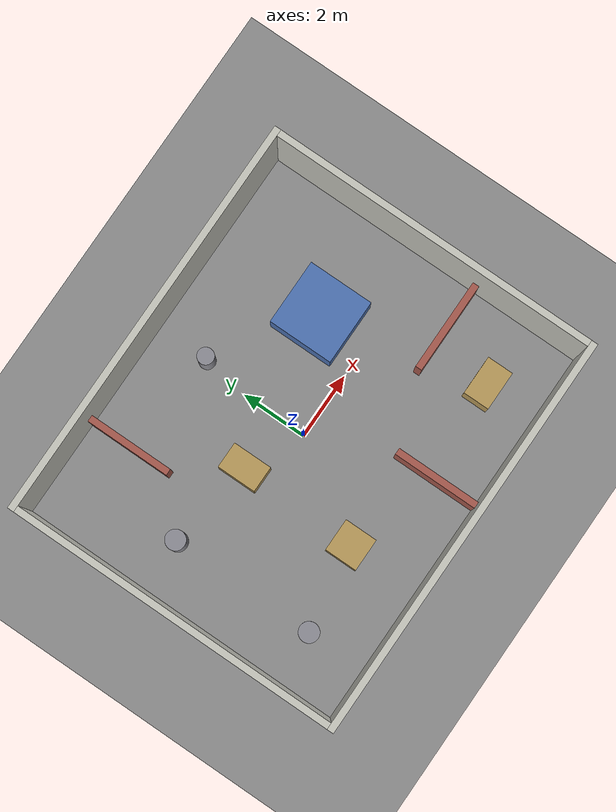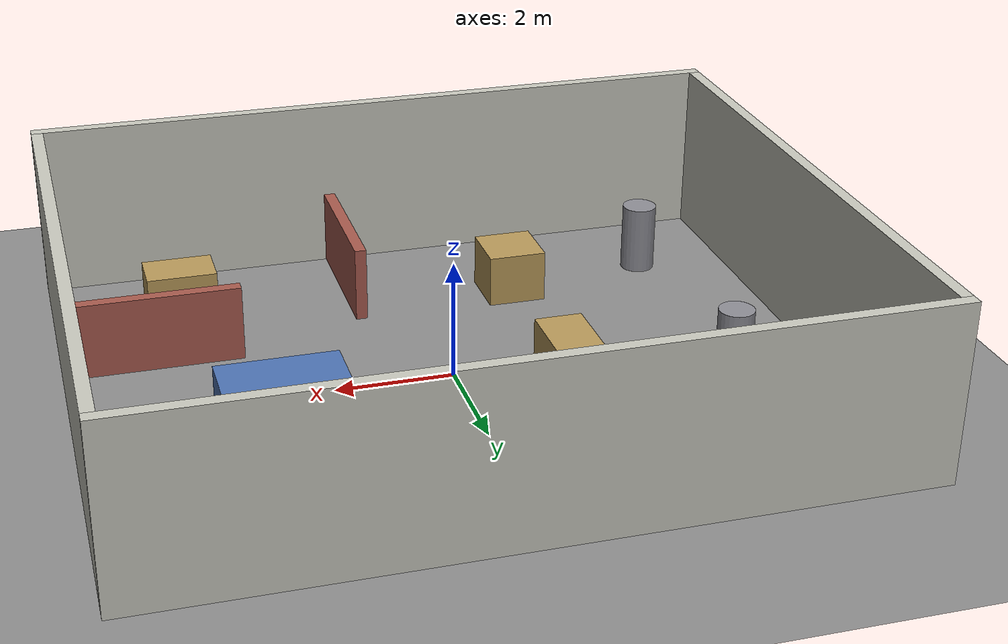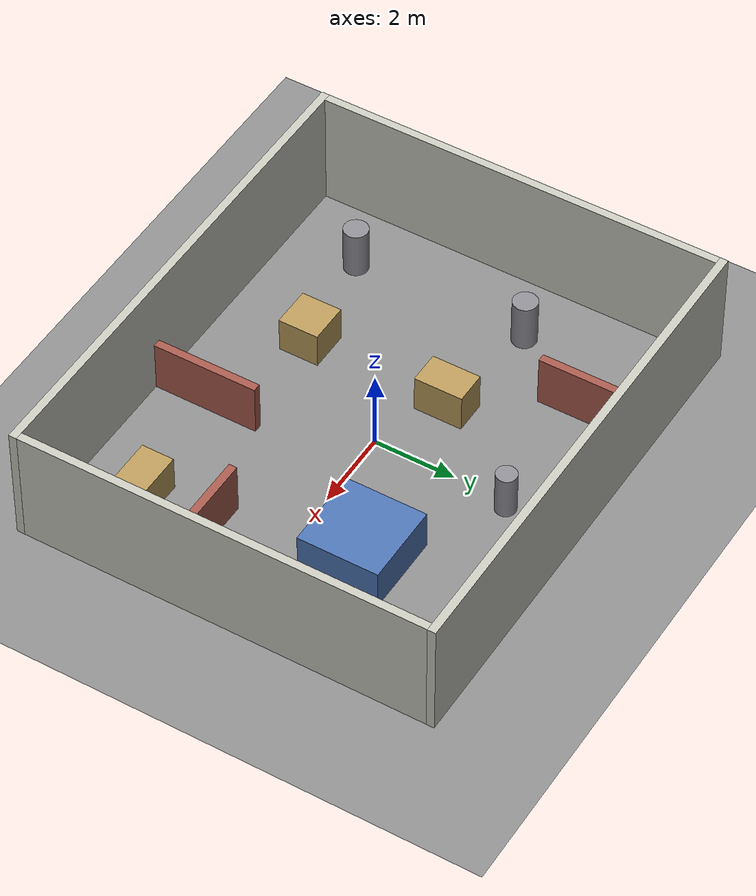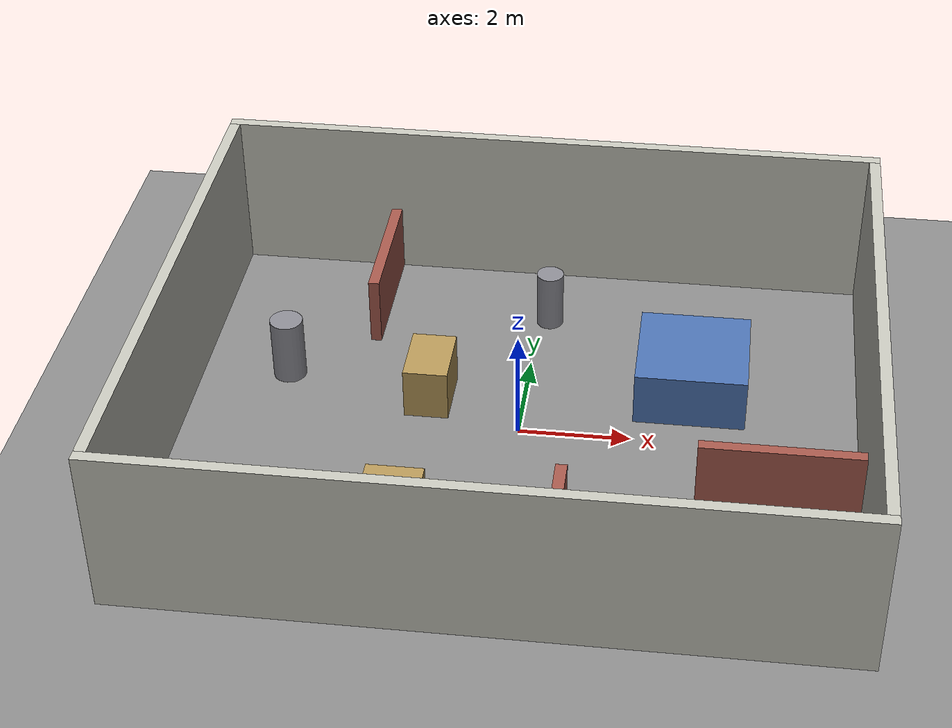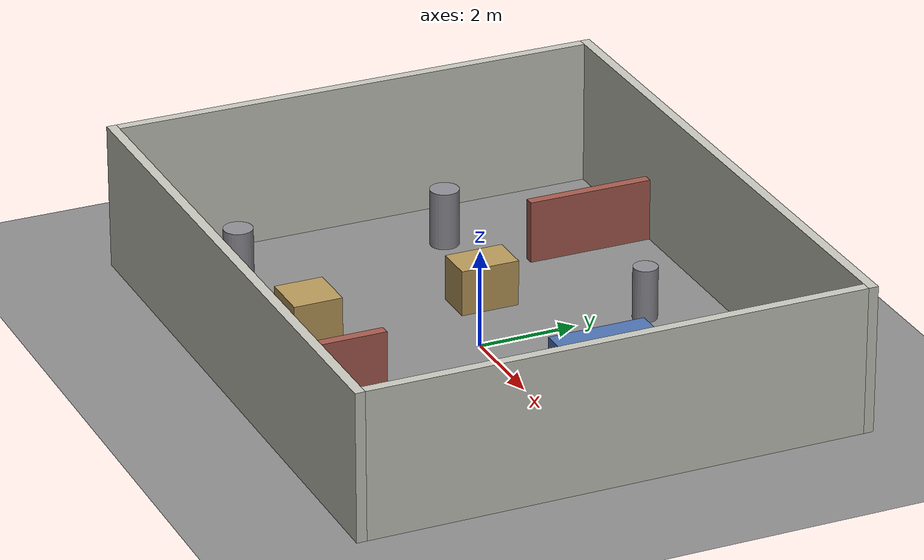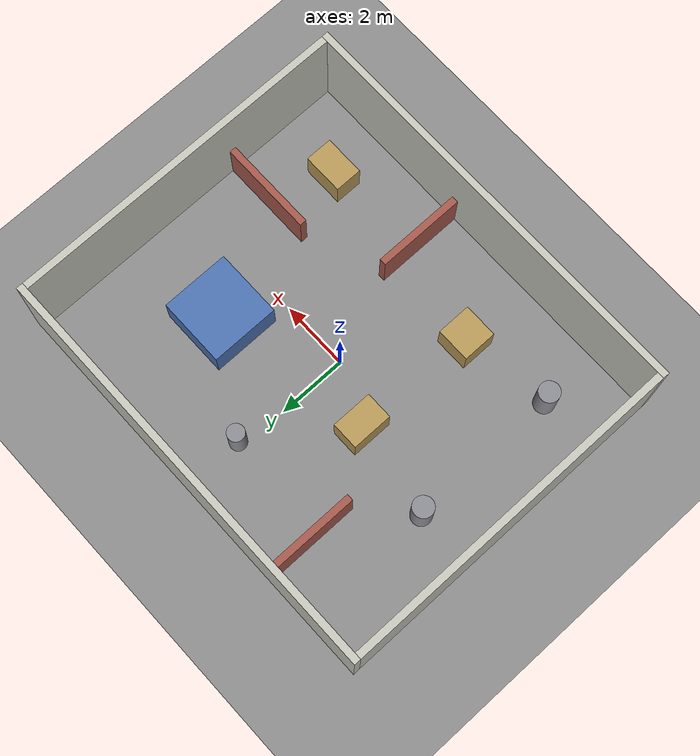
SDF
<?xml version="1.0" ?>
<!-- Generated by unitree_go2_description/tools/gen_simple_room.py - edit that script, not this file. -->
<sdf version="1.8">
  <world name="simple_room">
    <!-- bullet-featherstone handles articulated bodies far better than the default
         engine; a quadruped's legs jitter noticeably without it. -->
    <physics name="1ms" type="bullet-featherstone">
      <max_step_size>0.001</max_step_size>
      <real_time_factor>1.0</real_time_factor>
    </physics>
    <plugin filename="gz-sim-physics-system" name="gz::sim::systems::Physics"></plugin>
    <plugin filename="gz-sim-sensors-system" name="gz::sim::systems::Sensors">
      <render_engine>ogre2</render_engine>
    </plugin>
    <plugin filename="gz-sim-user-commands-system" name="gz::sim::systems::UserCommands"></plugin>
    <plugin filename="gz-sim-scene-broadcaster-system" name="gz::sim::systems::SceneBroadcaster"></plugin>

    <scene>
      <ambient>0.6 0.6 0.6 1</ambient>
      <background>0.7 0.8 0.9 1</background>
      <shadows>false</shadows>
    </scene>

    <light type="directional" name="sun">
      <cast_shadows>false</cast_shadows>
      <pose>-22 -18 25 0 0 0</pose>
      <diffuse>0.9 0.9 0.9 1</diffuse>
      <specular>0.2 0.2 0.2 1</specular>
      <direction>-0.5 0.2 -0.9</direction>
    </light>

    <model name="ground_plane">
      <static>true</static>
      <link name="link">
        <collision name="collision">
          <geometry><plane><normal>0 0 1</normal><size>40 40</size></plane></geometry>
          <surface>
            <friction><ode><mu>0.9</mu><mu2>0.9</mu2></ode></friction>
          </surface>
        </collision>
        <visual name="visual">
          <geometry><plane><normal>0 0 1</normal><size>40 40</size></plane></geometry>
          <material>
            <ambient>0.4 0.4 0.4 1</ambient>
            <diffuse>0.55 0.55 0.55 1</diffuse>
          </material>
        </visual>
      </link>
    </model>

    <model name="wall_north">
      <static>true</static>
      <pose>0.0 5.1 1.5 0 0 0</pose>
      <link name="link">
        <collision name="collision">
          <geometry><box><size>12.4 0.2 3.0</size></box></geometry>
        </collision>
        <visual name="visual">
          <geometry><box><size>12.4 0.2 3.0</size></box></geometry>
          <material>
            <ambient>0.390 0.390 0.370 1</ambient>
            <diffuse>0.780 0.780 0.740 1</diffuse>
          </material>
        </visual>
      </link>
    </model>
    <model name="wall_south">
      <static>true</static>
      <pose>0.0 -5.1 1.5 0 0 0</pose>
      <link name="link">
        <collision name="collision">
          <geometry><box><size>12.4 0.2 3.0</size></box></geometry>
        </collision>
        <visual name="visual">
          <geometry><box><size>12.4 0.2 3.0</size></box></geometry>
          <material>
            <ambient>0.390 0.390 0.370 1</ambient>
            <diffuse>0.780 0.780 0.740 1</diffuse>
          </material>
        </visual>
      </link>
    </model>
    <model name="wall_east">
      <static>true</static>
      <pose>6.1 0.0 1.5 0 0 0</pose>
      <link name="link">
        <collision name="collision">
          <geometry><box><size>0.2 10.0 3.0</size></box></geometry>
        </collision>
        <visual name="visual">
          <geometry><box><size>0.2 10.0 3.0</size></box></geometry>
          <material>
            <ambient>0.390 0.390 0.370 1</ambient>
            <diffuse>0.780 0.780 0.740 1</diffuse>
          </material>
        </visual>
      </link>
    </model>
    <model name="wall_west">
      <static>true</static>
      <pose>-6.1 0.0 1.5 0 0 0</pose>
      <link name="link">
        <collision name="collision">
          <geometry><box><size>0.2 10.0 3.0</size></box></geometry>
        </collision>
        <visual name="visual">
          <geometry><box><size>0.2 10.0 3.0</size></box></geometry>
          <material>
            <ambient>0.390 0.390 0.370 1</ambient>
            <diffuse>0.780 0.780 0.740 1</diffuse>
          </material>
        </visual>
      </link>
    </model>
    <model name="loop_block">
      <static>true</static>
      <pose>3.0 1.5 0.5 0 0 0</pose>
      <link name="link">
        <collision name="collision">
          <geometry><box><size>2.0 2.0 1.0</size></box></geometry>
        </collision>
        <visual name="visual">
          <geometry><box><size>2.0 2.0 1.0</size></box></geometry>
          <material>
            <ambient>0.150 0.225 0.350 1</ambient>
            <diffuse>0.300 0.450 0.700 1</diffuse>
          </material>
        </visual>
      </link>
    </model>
    <model name="part_north">
      <static>true</static>
      <pose>-3.0 3.7 0.65 0 0 0</pose>
      <link name="link">
        <collision name="collision">
          <geometry><box><size>0.2 2.6 1.3</size></box></geometry>
        </collision>
        <visual name="visual">
          <geometry><box><size>0.2 2.6 1.3</size></box></geometry>
          <material>
            <ambient>0.325 0.175 0.150 1</ambient>
            <diffuse>0.650 0.350 0.300 1</diffuse>
          </material>
        </visual>
      </link>
    </model>
    <model name="part_south">
      <static>true</static>
      <pose>1.0 -3.7 0.65 0 0 0</pose>
      <link name="link">
        <collision name="collision">
          <geometry><box><size>0.2 2.6 1.3</size></box></geometry>
        </collision>
        <visual name="visual">
          <geometry><box><size>0.2 2.6 1.3</size></box></geometry>
          <material>
            <ambient>0.325 0.175 0.150 1</ambient>
            <diffuse>0.650 0.350 0.300 1</diffuse>
          </material>
        </visual>
      </link>
    </model>
    <model name="part_east">
      <static>true</static>
      <pose>4.6 -1.6 0.65 0 0 0</pose>
      <link name="link">
        <collision name="collision">
          <geometry><box><size>2.8 0.2 1.3</size></box></geometry>
        </collision>
        <visual name="visual">
          <geometry><box><size>2.8 0.2 1.3</size></box></geometry>
          <material>
            <ambient>0.325 0.175 0.150 1</ambient>
            <diffuse>0.650 0.350 0.300 1</diffuse>
          </material>
        </visual>
      </link>
    </model>
    <model name="pillar_a">
      <static>true</static>
      <pose>-4.4 -3.2 0.6 0 0 0</pose>
      <link name="link">
        <collision name="collision">
          <geometry><cylinder><radius>0.3</radius><length>1.2</length></cylinder></geometry>
        </collision>
        <visual name="visual">
          <geometry><cylinder><radius>0.3</radius><length>1.2</length></cylinder></geometry>
          <material>
            <ambient>0.275 0.275 0.290 1</ambient>
            <diffuse>0.550 0.550 0.580 1</diffuse>
          </material>
        </visual>
      </link>
    </model>
    <model name="pillar_b">
      <static>true</static>
      <pose>-4.4 1.2 0.6 0 0 0</pose>
      <link name="link">
        <collision name="collision">
          <geometry><cylinder><radius>0.3</radius><length>1.2</length></cylinder></geometry>
        </collision>
        <visual name="visual">
          <geometry><cylinder><radius>0.3</radius><length>1.2</length></cylinder></geometry>
          <material>
            <ambient>0.275 0.275 0.290 1</ambient>
            <diffuse>0.550 0.550 0.580 1</diffuse>
          </material>
        </visual>
      </link>
    </model>
    <model name="pillar_c">
      <static>true</static>
      <pose>0.2 3.4 0.55 0 0 0</pose>
      <link name="link">
        <collision name="collision">
          <geometry><cylinder><radius>0.25</radius><length>1.1</length></cylinder></geometry>
        </collision>
        <visual name="visual">
          <geometry><cylinder><radius>0.25</radius><length>1.1</length></cylinder></geometry>
          <material>
            <ambient>0.275 0.275 0.290 1</ambient>
            <diffuse>0.550 0.550 0.580 1</diffuse>
          </material>
        </visual>
      </link>
    </model>
    <model name="crate_a">
      <static>true</static>
      <pose>-1.8 -2.8 0.45 0 0 0</pose>
      <link name="link">
        <collision name="collision">
          <geometry><box><size>1.0 1.0 0.9</size></box></geometry>
        </collision>
        <visual name="visual">
          <geometry><box><size>1.0 1.0 0.9</size></box></geometry>
          <material>
            <ambient>0.360 0.300 0.175 1</ambient>
            <diffuse>0.720 0.600 0.350 1</diffuse>
          </material>
        </visual>
      </link>
    </model>
    <model name="crate_b">
      <static>true</static>
      <pose>-1.7 0.8 0.475 0 0 0</pose>
      <link name="link">
        <collision name="collision">
          <geometry><box><size>0.8 1.2 0.95</size></box></geometry>
        </collision>
        <visual name="visual">
          <geometry><box><size>0.8 1.2 0.95</size></box></geometry>
          <material>
            <ambient>0.360 0.300 0.175 1</ambient>
            <diffuse>0.720 0.600 0.350 1</diffuse>
          </material>
        </visual>
      </link>
    </model>
    <model name="crate_c">
      <static>true</static>
      <pose>4.0 -3.4 0.45 0 0 0</pose>
      <link name="link">
        <collision name="collision">
          <geometry><box><size>1.2 0.8 0.9</size></box></geometry>
        </collision>
        <visual name="visual">
          <geometry><box><size>1.2 0.8 0.9</size></box></geometry>
          <material>
            <ambient>0.360 0.300 0.175 1</ambient>
            <diffuse>0.720 0.600 0.350 1</diffuse>
          </material>
        </visual>
      </link>
    </model>
  </world>
</sdf>
